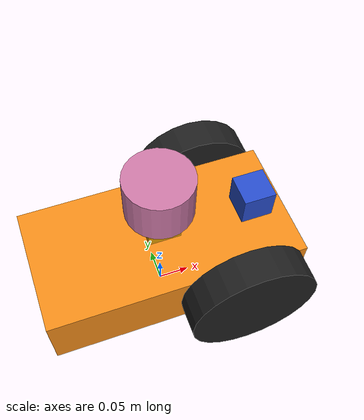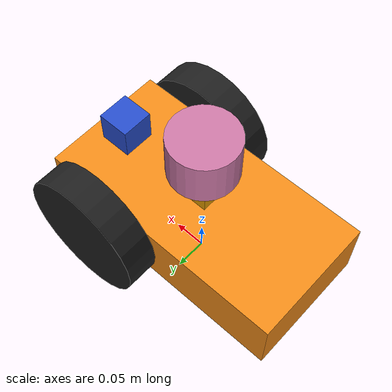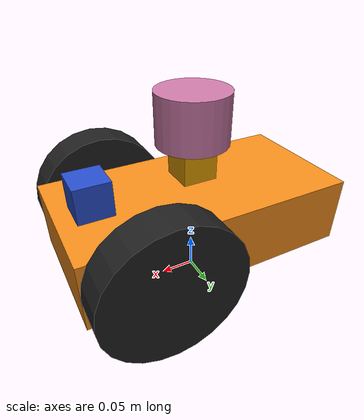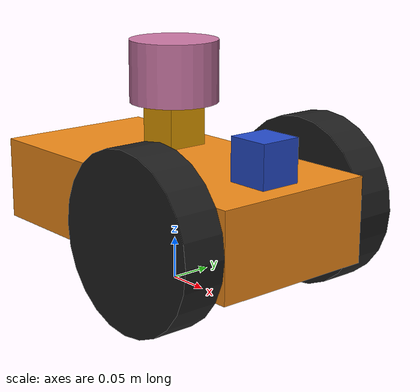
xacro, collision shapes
<?xml version="1.0"?>

<robot name="mybot" xmlns:xacro="http://www.ros.org/wiki/xacro">

  <xacro:property name="PI" value="3.1415926535897931"/>

  <xacro:property name="chassisHeight" value="0.1"/>
  <xacro:property name="chassisLength" value="0.4"/>
  <xacro:property name="chassisWidth" value="0.2"/>
  <xacro:property name="chassisMass" value="50"/>

  <xacro:property name="casterRadius" value="0.05"/>
  <xacro:property name="casterMass" value="5"/>

  <xacro:property name="wheelWidth" value="0.05"/>
  <xacro:property name="wheelRadius" value="0.1"/>
  <xacro:property name="wheelPos" value="0.2"/>
  <xacro:property name="wheelMass" value="5"/>

  <xacro:property name="cameraSize" value="0.05"/>
  <xacro:property name="cameraMass" value="0.1"/>
  <xacro:property name="mount_height" value="0.08"/>

  <xacro:include filename="$(find smf1_description)/urdf/mybot.gazebo" />
  <xacro:include filename="$(find smf1_description)/urdf/materials.xacro" />
  <xacro:include filename="$(find smf1_description)/urdf/macros.xacro" />

  <link name="footprint" />

  <joint name="base_joint" type="fixed">
    <parent link="footprint"/>
    <child link="chassis"/>
  </joint>

  <link name="chassis">
    <collision>
      <origin xyz="0 0 ${wheelRadius}" rpy="0 0 0"/>
      <geometry>
	<box size="${chassisLength} ${chassisWidth} ${chassisHeight}"/>
      </geometry>
    </collision>

    <visual>
      <origin xyz="0 0 ${wheelRadius}" rpy="0 0 0"/>
      <geometry>
	<box size="${chassisLength} ${chassisWidth} ${chassisHeight}"/>
      </geometry>
      <material name="orange"/>
    </visual>

    <inertial>
      <origin xyz="0 0 ${wheelRadius}" rpy="0 0 0"/>
      <mass value="${chassisMass}"/>
      <box_inertia m="${chassisMass}" x="${chassisLength}" y="${chassisWidth}" z="${chassisHeight}"/>
    </inertial>
  </link>

  <joint name="fixed" type="fixed">
    <parent link="chassis"/>
    <child link="caster_wheel"/>
  </joint>

  <link name="caster_wheel">

    <collision>
      <origin xyz="${casterRadius-chassisLength/2} 0 ${casterRadius-chassisHeight+wheelRadius}" rpy="0 0 0"/>
      <geometry>
	<sphere radius="${casterRadius}"/>
      </geometry>
    </collision>

    <visual>
      <origin xyz="${casterRadius-chassisLength/2} 0 ${casterRadius-chassisHeight+wheelRadius}" rpy="0 0 0"/>
      <geometry>
	<sphere radius="${casterRadius}"/>
      </geometry>
      <material name="red"/>
    </visual>

    <inertial>
      <origin xyz="${casterRadius-chassisLength/2} 0 ${casterRadius-chassisHeight+wheelRadius}" rpy="0 0 0"/>
      <mass value="${casterMass}"/>
      <sphere_inertia m="${casterMass}" r="${casterRadius}"/>
    </inertial>
  </link>

  <wheel lr="left" tY="-1"/>
  <wheel lr="right" tY="1"/>

  <joint name="camera_joint" type="fixed">
    <origin xyz="${-cameraSize+chassisLength/2} 0 ${cameraSize+wheelRadius+cameraSize/2}" rpy="0 0 0"/>
    <parent link="chassis"/>
    <child link="camera"/>
  </joint>

  <link name="camera">
    <collision>
      <origin xyz="0 0 0" rpy="0 0 0"/>
      <geometry>
	<box size="${cameraSize} ${cameraSize} ${cameraSize}"/>
      </geometry>
    </collision>

    <visual>
      <origin xyz="0 0 0" rpy="0 0 0"/>
      <geometry>
	<box size="${cameraSize} ${cameraSize} ${cameraSize}"/>
      </geometry>
      <material name="blue"/>
    </visual>

    <inertial>
      <mass value="${cameraMass}" />
      <origin xyz="0 0 0" rpy="0 0 0"/>
      <box_inertia m="${cameraMass}" x="${cameraSize}" y="${cameraSize}" z="${cameraSize}" />
    </inertial>
  </link>

  <xacro:include filename="$(find velodyne_description)/urdf/VLP-16.urdf.xacro"/>
  <VLP-16 parent="mount" name="velodyne" topic="/velodyne_points" hz="10" samples="440">
    <origin xyz="0 0 0.025" rpy="0 0 0" />
  </VLP-16>

  <joint name="mount" type="fixed" >
   <parent link="chassis" />
    <child link="mount" />
    <origin xyz="0 0 ${0.05+wheelRadius+mount_height/2}" rpy="0 0 0" />
  </joint>
  <link name="mount" >
    <visual>
      <geometry>
        <box size="0.05 0.05 ${mount_height}" />
      </geometry>
    </visual>
    <collision>
      <geometry>
        <box size="0.05 0.05 0.05" />
      </geometry>
    </collision>
    <inertial>
      <origin xyz="0 0 0"/>
      <mass value="10"/>
      <inertia ixx="3.0" ixy="0.0" ixz="0.0"
               iyy="3.0" iyz="0.0"
               izz="3.0" />
    </inertial>
  </link>

</robot>

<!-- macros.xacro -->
<robot>
     <macro name="cylinder_inertia" params="m r h">
        <inertia  ixx="${m*(3*r*r+h*h)/12}" ixy = "0" ixz = "0"
                  iyy="${m*(3*r*r+h*h)/12}" iyz = "0"
                  izz="${m*r*r/2}" />
      </macro>

      <macro name="box_inertia" params="m x y z">
        <inertia  ixx="${m*(y*y+z*z)/12}" ixy = "0" ixz = "0"
                  iyy="${m*(x*x+z*z)/12}" iyz = "0"
                  izz="${m*(x*x+z*z)/12}" />
      </macro>

      <macro name="sphere_inertia" params="m r">
        <inertia  ixx="${2*m*r*r/5}" ixy = "0" ixz = "0"
                  iyy="${2*m*r*r/5}" iyz = "0"
                  izz="${2*m*r*r/5}" />
      </macro>

     <macro name="wheel" params="lr tY">

       <link name="${lr}_wheel">
        <collision>
          <origin xyz="0 0 0" rpy="0 ${PI/2} ${PI/2}" />
          <geometry>
           <cylinder length="${wheelWidth}" radius="${wheelRadius}"/>
          </geometry>
        </collision>

        <visual>
          <origin xyz="0 0 0" rpy="0 ${PI/2} ${PI/2}" />
          <geometry>
           <cylinder length="${wheelWidth}" radius="${wheelRadius}"/>
          </geometry>
          <material name="black"/>
        </visual>

        <inertial>
          <origin xyz="0 0 0" rpy="0 ${PI/2} ${PI/2}" />
          <mass value="${wheelMass}"/>
          <cylinder_inertia m="${wheelMass}" r="${wheelRadius}" h="${wheelWidth}"/>
        </inertial>
       </link>

        <gazebo reference="${lr}_wheel">
          <mu1 value="2000.0"/>
          <mu2 value="2000.0"/>
          <kp  value="10000000.0" />
          <kd  value="1.0" />
          <fdir1 value="0 1 0"/>
          <material>Gazebo/Black</material>
        </gazebo>

       <joint name="${lr}_wheel_hinge" type="continuous">
          <parent link="chassis"/>
          <child link="${lr}_wheel"/>
          <origin xyz="${+wheelPos-chassisLength/4} ${tY*wheelWidth/2+tY*chassisWidth/2} ${wheelRadius}" rpy="0 0 0" />
          <axis xyz="0 1 0" rpy="0 0 0" />
          <limit effort="100" velocity="100"/>
          <dynamics damping="0.0" friction="5000.0"/>
        </joint>

      <transmission name="${lr}_trans">
        <type>transmission_interface/SimpleTransmission</type>
        <joint name="${lr}_wheel_hinge">
            <hardwareInterface>EffortJointInterface</hardwareInterface>
        </joint>
        <actuator name="${lr}Motor">
        <hardwareInterface>hardwareInterface/EffortJointInterface</hardwareInterface>
        <mechanicalReduction>10</mechanicalReduction>
        </actuator>
      </transmission>

     </macro>
</robot>

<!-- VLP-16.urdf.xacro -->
<robot xmlns:xacro="http://www.ros.org/wiki/xacro" name="VLP-16">
  <xacro:property name="M_PI" value="3.1415926535897931" />
  <xacro:macro name="VLP-16" params="*origin parent:=base_link name:=velodyne topic:=/velodyne_points hz:=10 lasers:=16 samples:=1875
  collision_range:=0.1 min_range:=0.1 max_range:=130.0 noise:=0.008 min_angle:=-${M_PI} max_angle:=${M_PI}">

    <joint name="${name}_base_mount_joint" type="fixed">
      <xacro:insert_block name="origin" />
      <parent link="${parent}"/>
      <child link="${name}_base_link"/>
    </joint>

    <link name="${name}_base_link">
      <inertial>
        <mass value="0.83"/>
        <origin xyz="0 0 0.03585"/>
        <inertia ixx="${(0.83 * (3.0*0.0516*0.0516 + 0.0717*0.0717)) / 12.0}" ixy="0" ixz="0"
          iyy="${(0.83 * (3.0*0.0516*0.0516 + 0.0717*0.0717)) / 12.0}" iyz="0"
          izz="${0.5 * 0.83 * (0.0516*0.0516)}"/>
      </inertial>
      <visual>
        <geometry>
          <mesh filename="package://velodyne_description/meshes/VLP16_base_1.dae" />
        </geometry>
      </visual>
      <visual>
        <geometry>
          <mesh filename="package://velodyne_description/meshes/VLP16_base_2.dae" />
        </geometry>
      </visual>
      <collision>
        <origin rpy="0 0 0" xyz="0 0 0.03585"/>
        <geometry>
          <cylinder radius="0.0516" length="0.0717"/>
        </geometry>
      </collision>
    </link>

    <joint name="${name}_base_scan_joint" type="fixed" >
      <origin xyz="0 0 0.0377" rpy="0 0 0" />
      <parent link="${name}_base_link" />
      <child link="${name}"/>
    </joint>

    <link name="${name}">
      <inertial>
        <mass value="0.01"/>
        <origin xyz="0 0 0"/>
        <inertia ixx="1e-7" ixy="0" ixz="0" iyy="1e-7" iyz="0" izz="1e-7"/>
      </inertial>
      <visual>
        <origin xyz="0 0 -0.0377" />
        <geometry>
          <mesh filename="package://velodyne_description/meshes/VLP16_scan.dae" />
        </geometry>
      </visual>
    </link>

    <!-- Gazebo requires the velodyne_gazebo_plugins package -->
    <gazebo reference="${name}">
      <sensor type="ray" name="${name}-VLP16">
        <pose>0 0 0 0 0 0</pose>
        <visualize>false</visualize>
        <update_rate>${hz}</update_rate>
        <ray>
          <scan>
            <horizontal>
              <samples>${samples}</samples>
              <resolution>1</resolution>
              <min_angle>${min_angle}</min_angle>
              <max_angle>${max_angle}</max_angle>
            </horizontal>
            <vertical>
              <samples>${lasers}</samples>
              <resolution>1</resolution>
              <min_angle>-${15.0*M_PI/180.0}</min_angle>
              <max_angle> ${15.0*M_PI/180.0}</max_angle>
            </vertical>
          </scan>
          <range>
            <min>${collision_range}</min>
            <max>${max_range+1}</max>
            <resolution>0.001</resolution>
          </range>
          <noise>
            <type>gaussian</type>
            <mean>0.0</mean>
            <stddev>0.0</stddev>
          </noise>
        </ray>
        <plugin name="gazebo_ros_laser_controller" filename="libgazebo_ros_velodyne_laser.so">
          <topicName>${topic}</topicName>
          <frameName>${name}</frameName>
          <min_range>${min_range}</min_range>
          <max_range>${max_range}</max_range>
          <gaussianNoise>${noise}</gaussianNoise>
        </plugin>
      </sensor>
    </gazebo>

  </xacro:macro>
</robot>
